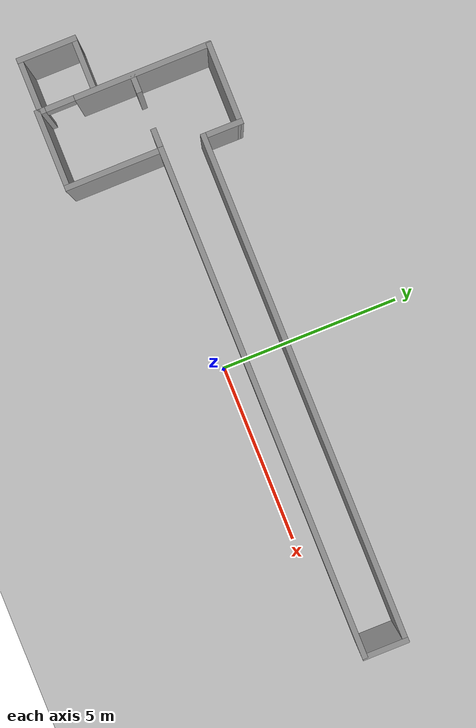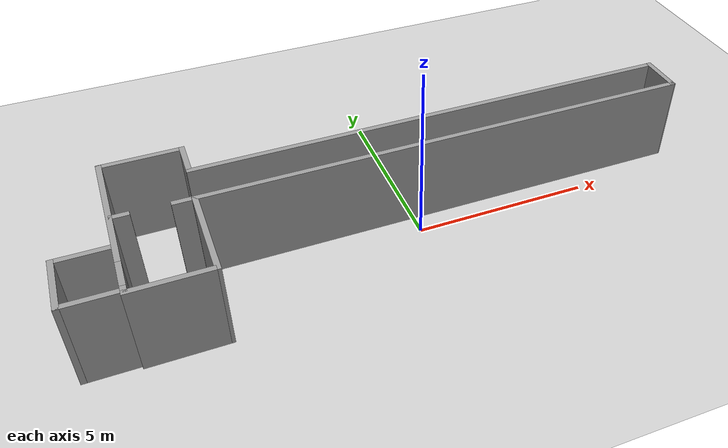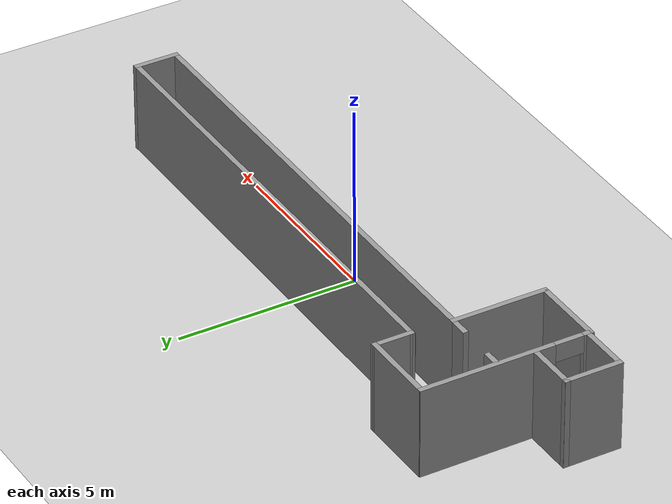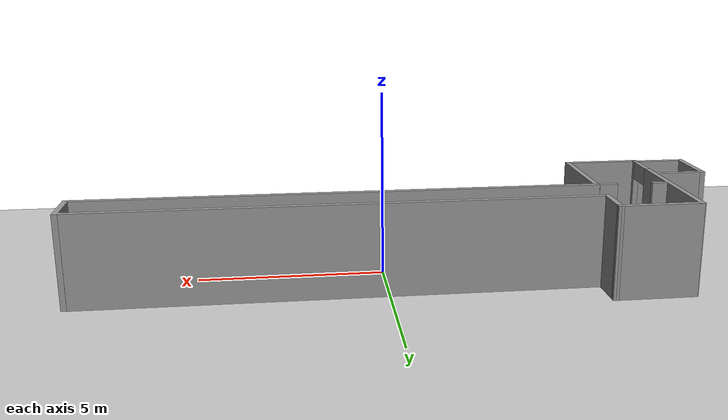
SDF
<?xml version="1.0" ?>
<sdf version="1.4">
  <world name="default">
    <include>
      <uri>model://ground_plane</uri>
    </include>
    <include>
      <uri>model://sun</uri>
    </include>
    <include>
      <uri>model://singtel_floorplan/singtel_floor6_out</uri>
      <name>singtel_floor6_out</name>
    </include>
  </world>
</sdf>

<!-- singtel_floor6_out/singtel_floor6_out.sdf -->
<sdf version='1.6'>
  <model name='singtel_floor6_out'>
    <pose frame=''>-0.541648 0.388666 0 0 -0 0</pose>
    <link name='Wall_0'>
      <collision name='Wall_0_Collision'>
        <geometry>
          <box>
            <size>13.8 0.15 2.5</size>
          </box>
        </geometry>
        <pose frame=''>0 0 1.25 0 -0 0</pose>
      </collision>
      <visual name='Wall_0_Visual'>
        <pose frame=''>0 0 1.25 0 -0 0</pose>
        <geometry>
          <box>
            <size>13.8 0.15 2.5</size>
          </box>
        </geometry>
        <material>
          <script>
            <uri>file://media/materials/scripts/gazebo.material</uri>
            <name>Gazebo/Grey</name>
          </script>
          <ambient>1 1 1 1</ambient>
        </material>
        <meta>
          <layer>0</layer>
        </meta>
      </visual>
      <pose frame=''>1.69267 1.3521 0 0 -0 3.14159</pose>
    </link>
    <link name='Wall_12'>
      <collision name='Wall_12_Collision'>
        <geometry>
          <box>
            <size>13.9913 0.15 2.5</size>
          </box>
        </geometry>
        <pose frame=''>0 0 1.25 0 -0 0</pose>
      </collision>
      <visual name='Wall_12_Visual'>
        <pose frame=''>0 0 1.25 0 -0 0</pose>
        <geometry>
          <box>
            <size>13.9913 0.15 2.5</size>
          </box>
        </geometry>
        <material>
          <script>
            <uri>file://media/materials/scripts/gazebo.material</uri>
            <name>Gazebo/Grey</name>
          </script>
          <ambient>1 1 1 1</ambient>
        </material>
        <meta>
          <layer>0</layer>
        </meta>
      </visual>
      <pose frame=''>1.70929 0.225335 0 0 -0 0</pose>
    </link>
    <link name='Wall_17'>
      <collision name='Wall_17_Collision'>
        <geometry>
          <box>
            <size>1.275 0.15 2.5</size>
          </box>
        </geometry>
        <pose frame=''>0 0 1.25 0 -0 0</pose>
      </collision>
      <visual name='Wall_17_Visual'>
        <pose frame=''>0 0 1.25 0 -0 0</pose>
        <geometry>
          <box>
            <size>1.275 0.15 2.5</size>
          </box>
        </geometry>
        <material>
          <script>
            <uri>file://media/materials/scripts/gazebo.material</uri>
            <name>Gazebo/Grey</name>
          </script>
          <ambient>1 1 1 1</ambient>
        </material>
        <meta>
          <layer>0</layer>
        </meta>
      </visual>
      <pose frame=''>8.66305 0.790623 0 0 -0 -1.5708</pose>
    </link>
    <link name='Wall_19'>
      <collision name='Wall_19_Collision'>
        <geometry>
          <box>
            <size>0.5 0.15 2.5</size>
          </box>
        </geometry>
        <pose frame=''>0 0 1.25 0 -0 0</pose>
      </collision>
      <visual name='Wall_19_Visual'>
        <pose frame=''>0 0 1.25 0 -0 0</pose>
        <geometry>
          <box>
            <size>0.5 0.15 2.5</size>
          </box>
        </geometry>
        <material>
          <script>
            <uri>file://media/materials/scripts/gazebo.material</uri>
            <name>Gazebo/Grey</name>
          </script>
          <ambient>1 1 1 1</ambient>
        </material>
        <meta>
          <layer>0</layer>
        </meta>
      </visual>
      <pose frame=''>-7.01602 0.2457 0 0 -0 0</pose>
    </link>
    <link name='Wall_2'>
      <collision name='Wall_2_Collision'>
        <geometry>
          <box>
            <size>1.13488 0.15 2.5</size>
          </box>
        </geometry>
        <pose frame=''>0 0 1.25 0 -0 0</pose>
      </collision>
      <visual name='Wall_2_Visual'>
        <pose frame=''>0 0 1.25 0 -0 0</pose>
        <geometry>
          <box>
            <size>1.13488 0.15 2.5</size>
          </box>
        </geometry>
        <material>
          <script>
            <uri>file://media/materials/scripts/gazebo.material</uri>
            <name>Gazebo/Grey</name>
          </script>
          <ambient>1 1 1 1</ambient>
        </material>
        <meta>
          <layer>0</layer>
        </meta>
      </visual>
      <pose frame=''>-5.1308 1.8521 0 0 -0 1.56769</pose>
    </link>
    <link name='Wall_24'>
      <collision name='Wall_24_Collision'>
        <geometry>
          <box>
            <size>0.5 0.15 2.5</size>
          </box>
        </geometry>
        <pose frame=''>0 0 1.25 0 -0 0</pose>
      </collision>
      <visual name='Wall_24_Visual'>
        <pose frame=''>0 0 1.25 0 -0 0</pose>
        <geometry>
          <box>
            <size>0.5 0.15 2.5</size>
          </box>
        </geometry>
        <material>
          <script>
            <uri>file://media/materials/scripts/gazebo.material</uri>
            <name>Gazebo/Grey</name>
          </script>
          <ambient>1 1 1 1</ambient>
        </material>
        <meta>
          <layer>0</layer>
        </meta>
      </visual>
      <pose frame=''>-5.53993 0.228309 0 0 -0 3.14159</pose>
    </link>
    <link name='Wall_27'>
      <collision name='Wall_27_Collision'>
        <geometry>
          <box>
            <size>2.72 0.15 2.5</size>
          </box>
        </geometry>
        <pose frame=''>0 0 1.25 0 -0 0</pose>
      </collision>
      <visual name='Wall_27_Visual'>
        <pose frame=''>0 0 1.25 0 -0 0</pose>
        <geometry>
          <box>
            <size>2.72 0.15 2.5</size>
          </box>
        </geometry>
        <material>
          <script>
            <uri>file://media/materials/scripts/gazebo.material</uri>
            <name>Gazebo/Grey</name>
          </script>
          <ambient>1 1 1 1</ambient>
        </material>
        <meta>
          <layer>0</layer>
        </meta>
      </visual>
      <pose frame=''>-5.21136 -1.05967 0 0 -0 -1.5708</pose>
    </link>
    <link name='Wall_29'>
      <collision name='Wall_29_Collision'>
        <geometry>
          <box>
            <size>1.63 0.15 2.5</size>
          </box>
        </geometry>
        <pose frame=''>0 0 1.25 0 -0 0</pose>
      </collision>
      <visual name='Wall_29_Visual'>
        <pose frame=''>0 0 1.25 0 -0 0</pose>
        <geometry>
          <box>
            <size>1.63 0.15 2.5</size>
          </box>
        </geometry>
        <material>
          <script>
            <uri>file://media/materials/scripts/gazebo.material</uri>
            <name>Gazebo/Grey</name>
          </script>
          <ambient>1 1 1 1</ambient>
        </material>
        <meta>
          <layer>0</layer>
        </meta>
      </visual>
      <pose frame=''>-8.66195 -1.53235 0 0 -0 -1.5708</pose>
    </link>
    <link name='Wall_31'>
      <collision name='Wall_31_Collision'>
        <geometry>
          <box>
            <size>1.41 0.15 2.5</size>
          </box>
        </geometry>
        <pose frame=''>0 0 1.25 0 -0 0</pose>
      </collision>
      <visual name='Wall_31_Visual'>
        <pose frame=''>0 0 1.25 0 -0 0</pose>
        <geometry>
          <box>
            <size>1.41 0.15 2.5</size>
          </box>
        </geometry>
        <material>
          <script>
            <uri>file://media/materials/scripts/gazebo.material</uri>
            <name>Gazebo/Grey</name>
          </script>
          <ambient>1 1 1 1</ambient>
        </material>
        <meta>
          <layer>0</layer>
        </meta>
      </visual>
      <pose frame=''>-8.0297 -2.27053 0 0 -0 0</pose>
    </link>
    <link name='Wall_36'>
      <collision name='Wall_36_Collision'>
        <geometry>
          <box>
            <size>1.41 0.15 2.5</size>
          </box>
        </geometry>
        <pose frame=''>0 0 1.25 0 -0 0</pose>
      </collision>
      <visual name='Wall_36_Visual'>
        <pose frame=''>0 0 1.25 0 -0 0</pose>
        <geometry>
          <box>
            <size>1.41 0.15 2.5</size>
          </box>
        </geometry>
        <material>
          <script>
            <uri>file://media/materials/scripts/gazebo.material</uri>
            <name>Gazebo/Grey</name>
          </script>
          <ambient>1 1 1 1</ambient>
        </material>
        <meta>
          <layer>0</layer>
        </meta>
      </visual>
      <pose frame=''>-8.03305 -0.794606 0 0 -0 0</pose>
    </link>
    <link name='Wall_4'>
      <collision name='Wall_4_Collision'>
        <geometry>
          <box>
            <size>2.25 0.15 2.5</size>
          </box>
        </geometry>
        <pose frame=''>0 0 1.25 0 -0 0</pose>
      </collision>
      <visual name='Wall_4_Visual'>
        <pose frame=''>0 0 1.25 0 -0 0</pose>
        <geometry>
          <box>
            <size>2.25 0.15 2.5</size>
          </box>
        </geometry>
        <material>
          <script>
            <uri>file://media/materials/scripts/gazebo.material</uri>
            <name>Gazebo/Grey</name>
          </script>
          <ambient>1 1 1 1</ambient>
        </material>
        <meta>
          <layer>0</layer>
        </meta>
      </visual>
      <pose frame=''>-6.17927 2.34454 0 0 -0 3.14159</pose>
    </link>
    <link name='Wall_7'>
      <pose frame=''>-7.25416 0.033452 0 0 -0 1.5708</pose>
      <visual name='Wall_7_Visual_0'>
        <pose frame=''>-2.27011 0 1.25 0 -0 0</pose>
        <geometry>
          <box>
            <size>0.209783 0.15 2.5</size>
          </box>
        </geometry>
        <material>
          <script>
            <uri>file://media/materials/scripts/gazebo.material</uri>
            <name>Gazebo/Grey</name>
          </script>
          <ambient>1 1 1 1</ambient>
        </material>
        <meta>
          <layer>0</layer>
        </meta>
      </visual>
      <collision name='Wall_7_Collision_0'>
        <geometry>
          <box>
            <size>0.209783 0.15 2.5</size>
          </box>
        </geometry>
        <pose frame=''>-2.27011 0 1.25 0 -0 0</pose>
      </collision>
      <visual name='Wall_7_Visual_1'>
        <pose frame=''>0.499892 0 1.25 0 -0 0</pose>
        <geometry>
          <box>
            <size>3.75022 0.15 2.5</size>
          </box>
        </geometry>
        <material>
          <script>
            <uri>file://media/materials/scripts/gazebo.material</uri>
            <name>Gazebo/Grey</name>
          </script>
          <ambient>1 1 1 1</ambient>
        </material>
        <meta>
          <layer>0</layer>
        </meta>
      </visual>
      <collision name='Wall_7_Collision_1'>
        <geometry>
          <box>
            <size>3.75022 0.15 2.5</size>
          </box>
        </geometry>
        <pose frame=''>0.499892 0 1.25 0 -0 0</pose>
      </collision>
      <visual name='Wall_7_Visual_2'>
        <pose frame=''>-1.77022 0 2.25 0 -0 0</pose>
        <geometry>
          <box>
            <size>0.79 0.15 0.5</size>
          </box>
        </geometry>
        <material>
          <script>
            <uri>file://media/materials/scripts/gazebo.material</uri>
            <name>Gazebo/Grey</name>
          </script>
          <ambient>1 1 1 1</ambient>
        </material>
        <meta>
          <layer>0</layer>
        </meta>
      </visual>
      <collision name='Wall_7_Collision_2'>
        <geometry>
          <box>
            <size>0.79 0.15 0.5</size>
          </box>
        </geometry>
        <pose frame=''>-1.77022 0 2.25 0 -0 0</pose>
      </collision>
    </link>
    <link name='Wall_9'>
      <collision name='Wall_9_Collision'>
        <geometry>
          <box>
            <size>2.1 0.15 2.5</size>
          </box>
        </geometry>
        <pose frame=''>0 0 1.25 0 -0 0</pose>
      </collision>
      <visual name='Wall_9_Visual'>
        <pose frame=''>0 0 1.25 0 -0 0</pose>
        <geometry>
          <box>
            <size>2.1 0.15 2.5</size>
          </box>
        </geometry>
        <material>
          <script>
            <uri>file://media/materials/scripts/gazebo.material</uri>
            <name>Gazebo/Grey</name>
          </script>
          <ambient>1 1 1 1</ambient>
        </material>
        <meta>
          <layer>0</layer>
        </meta>
      </visual>
      <pose frame=''>-6.28008 -2.34477 0 0 -0 3.14159</pose>
    </link>
    <static>1</static>
  </model>
</sdf>
